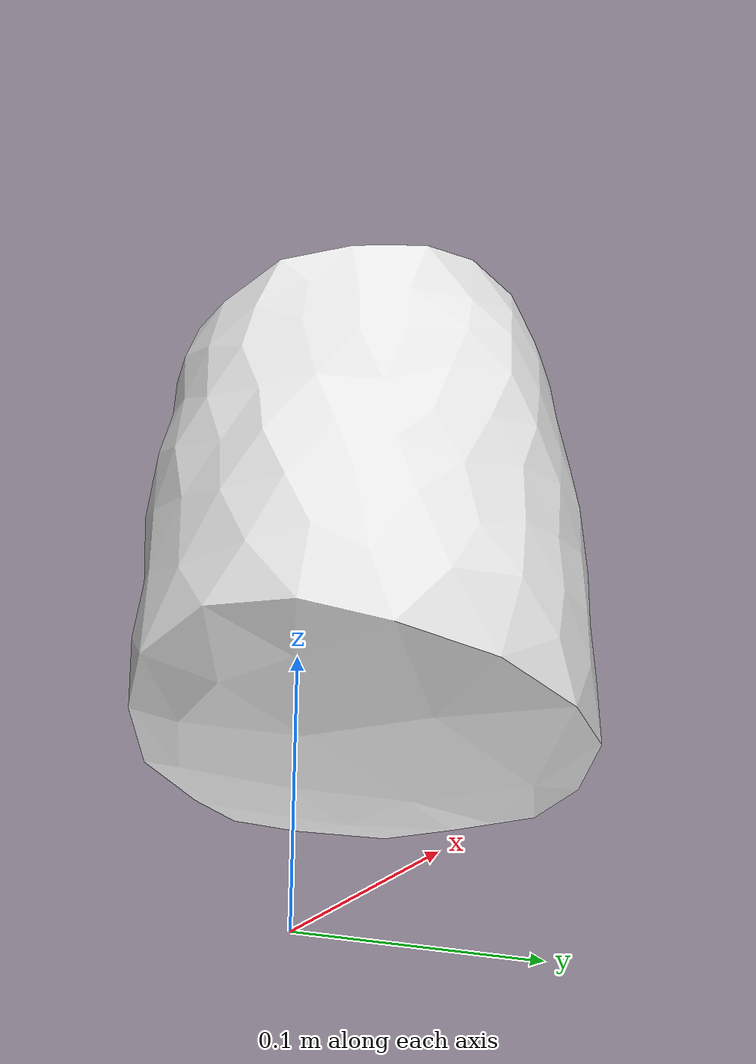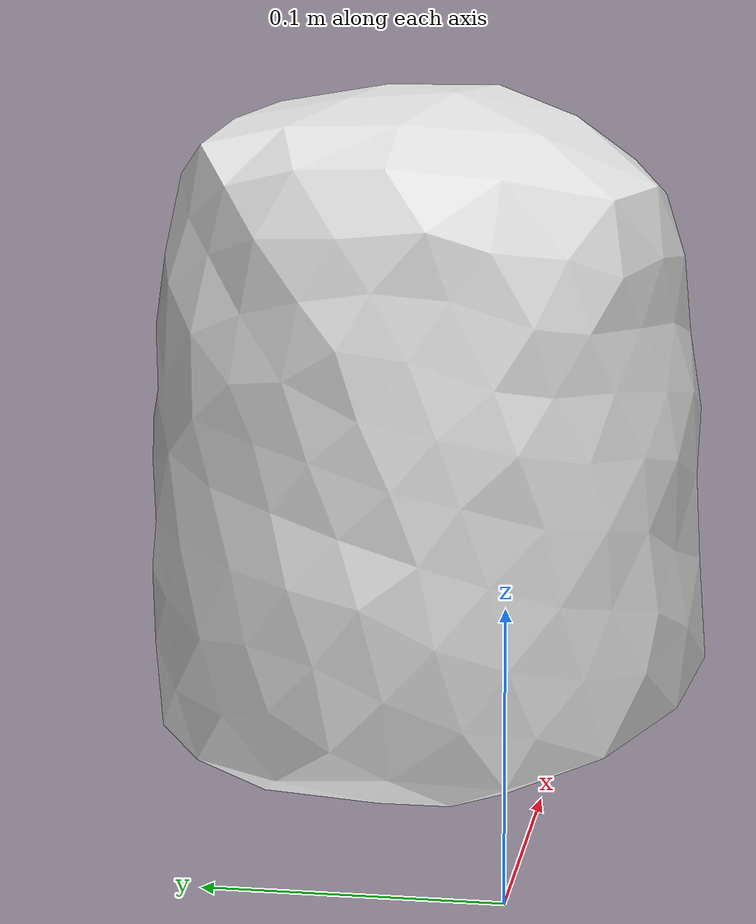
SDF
<?xml version="1.0" ?><sdf version="1.5"><model name="becks-barrel1">
<link name="link">
<pose>0 0 0 0 0 0</pose>
<inertial>
<pose>0.001289 0.025077 0.155765 0 0 0</pose>
<mass>0.53</mass>
<inertia>
<ixx>0.00334182</ixx>
<ixy>0</ixy><iyy>0.00339761</iyy>
<ixz>0</ixz><iyz>0</iyz><izz>0.00277753</izz>
</inertia>
</inertial>
<visual name="visual">
<pose>0 0 0 0 0 0</pose>
<geometry><mesh><uri>model://becks-barrel1/meshes/becks-barrel1.dae</uri></mesh></geometry>
<material><script><uri>file://media/materials/scripts/gazebo.material</uri><name>Gazebo/WhiteGlow</name></script></material></visual>
<collision name="collision"><pose>0 0 0 0 0 0</pose><geometry><mesh><uri>model://becks-barrel1/meshes/becks-barrel1.dae</uri></mesh></geometry>
<surface><friction><ode><mu>1.000000</mu><mu2>1.000000</mu2></ode></friction></surface>
</collision></link></model></sdf>
